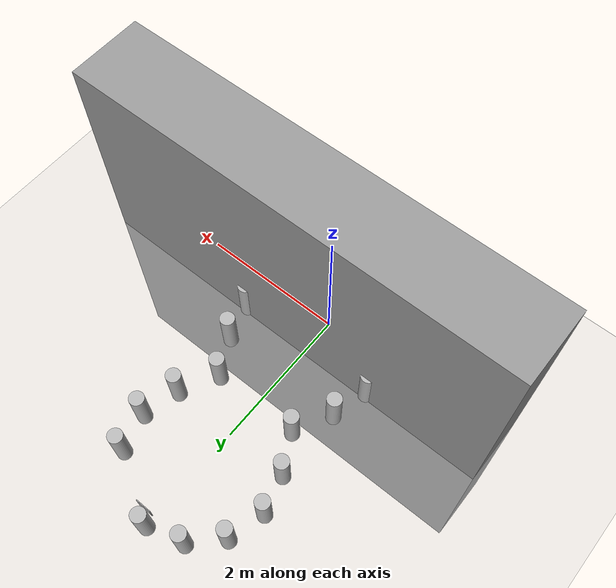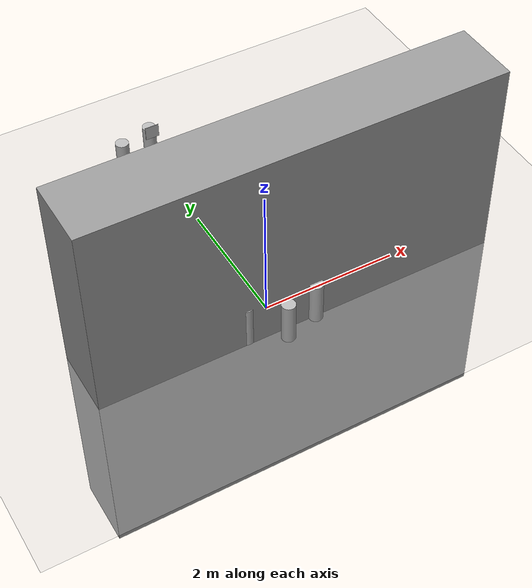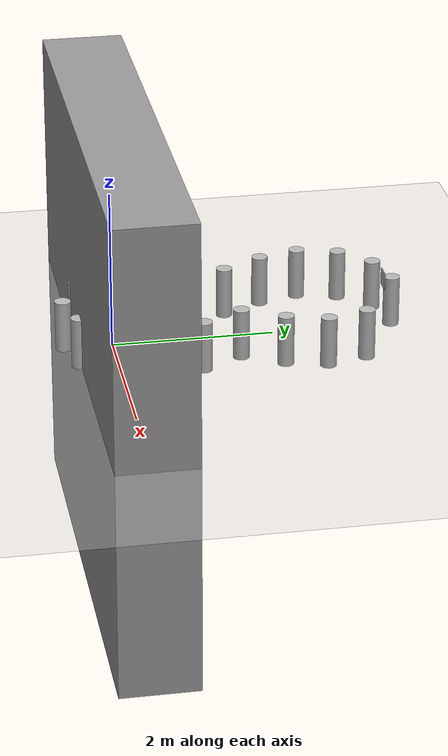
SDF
<sdf version="1.7">
 <world name="default">
  <include><uri>model://unit_box_1</uri><name>unit_box_1</name><pose>0.3 0.05 0.015 0 0 -1.57</pose></include>
  <light name="sun" type="directional">
   <pose>0 0 10 0 -0 0</pose>
   <diffuse>0.8 0.8 0.8 1</diffuse>
   <specular>0.2 0.2 0.2 1</specular>
   <attenuation>
    <range>1000</range>
    <constant>0.9</constant>
    <linear>0.01</linear>
    <quadratic>0.001</quadratic>
   </attenuation>
   <direction>-0.5 0.1 -0.9</direction>
   <spot><inner_angle>0</inner_angle><outer_angle>0</outer_angle><falloff>0</falloff></spot>
  </light>
  <model name="ground_plane">
   <static>1</static>
   <link name="link">
    <collision name="collision">
     <geometry><plane><normal>0 0 1</normal><size>100 100</size></plane></geometry>
     <surface>
      <contact><collide_bitmask>65535</collide_bitmask></contact>
      <friction><ode><mu>100</mu><mu2>50</mu2></ode></friction>
     </surface>
    </collision>
    <visual name="visual">
     <cast_shadows>0</cast_shadows>
     <geometry><plane><normal>0 0 1</normal><size>100 100</size></plane></geometry>
     <material>
      <script><uri>file://media/materials/scripts/gazebo.material</uri><name>Gazebo/Grey</name></script>
     </material>
    </visual>
   </link>
  </model>
  <physics type="ode">
   <max_step_size>0.001</max_step_size>
   <real_time_factor>1</real_time_factor>
   <real_time_update_rate>1000</real_time_update_rate>
  </physics>
  <model name="column_1">
   <static>1</static>
   <link name="link">
    <collision name="collision"><geometry><box><size>0.2 0.2 1.3</size></box></geometry></collision>
    <visual name="visual">
     <geometry>
      <mesh><scale>0.5 0.5 0.8</scale><uri>model://ICT_models/column_1/meshes/model.dae</uri></mesh>
     </geometry>
     <material>
      <script>
       <uri>model://ICT_models/column_1/materials/scripts</uri>
       <uri>model://ICT_models/column_1/materials/textures</uri>
       <name>model_material/Diffuse</name>
      </script>
     </material>
    </visual>
   </link>
   <pose>-0.6 1.5 0 0 -0 0</pose>
  </model>
  <model name="column_2">
   <static>1</static>
   <link name="link">
    <collision name="collision"><geometry><box><size>0.2 0.2 1.3</size></box></geometry></collision>
    <visual name="visual">
     <geometry>
      <mesh><scale>0.5 0.5 0.8</scale><uri>model://ICT_models/column_2/meshes/model.dae</uri></mesh>
     </geometry>
     <material>
      <script>
       <uri>model://ICT_models/column_2/materials/scripts</uri>
       <uri>model://ICT_models/column_2/materials/textures</uri>
       <name>model_material2/Diffuse</name>
      </script>
     </material>
    </visual>
   </link>
   <pose>-0.866 2 0 0 -0 0</pose>
  </model>
  <model name="column_3">
   <static>1</static>
   <link name="link">
    <collision name="collision"><geometry><box><size>0.2 0.2 1.3</size></box></geometry></collision>
    <visual name="visual">
     <geometry>
      <mesh><scale>0.5 0.5 0.8</scale><uri>model://ICT_models/column_3/meshes/model.dae</uri></mesh>
     </geometry>
     <material>
      <script>
       <uri>model://ICT_models/column_3/materials/scripts</uri>
       <uri>model://ICT_models/column_3/materials/textures</uri>
       <name>model_material3/Diffuse</name>
      </script>
     </material>
    </visual>
   </link>
   <pose>-1 2.5 0 0 -0 0</pose>
  </model>
  <model name="column_4">
   <static>1</static>
   <link name="link">
    <collision name="collision"><geometry><box><size>0.2 0.2 1.3</size></box></geometry></collision>
    <visual name="visual">
     <geometry>
      <mesh><scale>0.5 0.5 0.8</scale><uri>model://ICT_models/column_4/meshes/model.dae</uri></mesh>
     </geometry>
     <material>
      <script>
       <uri>model://ICT_models/column_4/materials/scripts</uri>
       <uri>model://ICT_models/column_4/materials/textures</uri>
       <name>model_material4/Diffuse</name>
      </script>
     </material>
    </visual>
   </link>
   <pose>-0.866 3 0 0 -0 0</pose>
  </model>
  <model name="column_5">
   <static>1</static>
   <link name="link">
    <collision name="collision"><geometry><box><size>0.2 0.2 1.3</size></box></geometry></collision>
    <visual name="visual">
     <geometry>
      <mesh><scale>0.5 0.5 0.8</scale><uri>model://ICT_models/column_5/meshes/model.dae</uri></mesh>
     </geometry>
     <material>
      <script>
       <uri>model://ICT_models/column_5/materials/scripts</uri>
       <uri>model://ICT_models/column_5/materials/textures</uri>
       <name>model_material5/Diffuse</name>
      </script>
     </material>
    </visual>
   </link>
   <pose>-0.5 3.366 0 0 -0 0</pose>
  </model>
  <model name="column_6">
   <static>1</static>
   <link name="link">
    <collision name="collision"><geometry><box><size>0.2 0.2 1.3</size></box></geometry></collision>
    <visual name="visual">
     <geometry>
      <mesh><scale>0.5 0.5 0.8</scale><uri>model://ICT_models/column_6/meshes/model.dae</uri></mesh>
     </geometry>
     <material>
      <script>
       <uri>model://ICT_models/column_6/materials/scripts</uri>
       <uri>model://ICT_models/column_6/materials/textures</uri>
       <name>model_material6/Diffuse</name>
      </script>
     </material>
    </visual>
   </link>
   <pose>0 3.5 0 0 -0 0</pose>
  </model>
  <model name="column_8">
   <static>1</static>
   <link name="link">
    <collision name="collision"><geometry><box><size>0.2 0.2 1.3</size></box></geometry></collision>
    <visual name="visual">
     <geometry>
      <mesh><scale>0.5 0.5 0.8</scale><uri>model://ICT_models/column_8/meshes/model.dae</uri></mesh>
     </geometry>
     <material>
      <script>
       <uri>model://ICT_models/column_8/materials/scripts</uri>
       <uri>model://ICT_models/column_8/materials/textures</uri>
       <name>model_material8/Diffuse</name>
      </script>
     </material>
    </visual>
   </link>
   <pose>0.866 3 0 0 -0 0</pose>
  </model>
  <model name="column_9">
   <static>1</static>
   <link name="link">
    <collision name="collision"><geometry><box><size>0.2 0.2 1.3</size></box></geometry></collision>
    <visual name="visual">
     <geometry>
      <mesh><scale>0.5 0.5 0.8</scale><uri>model://ICT_models/column_9/meshes/model.dae</uri></mesh>
     </geometry>
     <material>
      <script>
       <uri>model://ICT_models/column_9/materials/scripts</uri>
       <uri>model://ICT_models/column_9/materials/textures</uri>
       <name>model_material9/Diffuse</name>
      </script>
     </material>
    </visual>
   </link>
   <pose>1 2.5 0 0 -0 0</pose>
  </model>
  <model name="column_10">
   <static>1</static>
   <link name="link">
    <collision name="collision"><geometry><box><size>0.2 0.2 1.3</size></box></geometry></collision>
    <visual name="visual">
     <geometry>
      <mesh><scale>0.5 0.5 0.8</scale><uri>model://ICT_models/column_10/meshes/model.dae</uri></mesh>
     </geometry>
     <material>
      <script>
       <uri>model://ICT_models/column_10/materials/scripts</uri>
       <uri>model://ICT_models/column_10/materials/textures</uri>
       <name>model_material10/Diffuse</name>
      </script>
     </material>
    </visual>
   </link>
   <pose>0.866 2 0 0 -0 0</pose>
  </model>
  <model name="column_11">
   <static>1</static>
   <link name="link">
    <collision name="collision"><geometry><box><size>0.2 0.2 1.3</size></box></geometry></collision>
    <visual name="visual">
     <geometry>
      <mesh><scale>0.5 0.5 0.8</scale><uri>model://ICT_models/column_11/meshes/model.dae</uri></mesh>
     </geometry>
     <material>
      <script>
       <uri>model://ICT_models/column_11/materials/scripts</uri>
       <uri>model://ICT_models/column_11/materials/textures</uri>
       <name>model_material11/Diffuse</name>
      </script>
     </material>
    </visual>
   </link>
   <pose>0.6 1.5 0 0 -0 0</pose>
  </model>
  <model name="column_12">
   <static>1</static>
   <link name="link">
    <collision name="collision"><geometry><box><size>0.2 0.2 1.3</size></box></geometry></collision>
    <visual name="visual">
     <geometry>
      <mesh><scale>0.5 0.5 0.8</scale><uri>model://ICT_models/column_12/meshes/model.dae</uri></mesh>
     </geometry>
     <material>
      <script>
       <uri>model://ICT_models/column_12/materials/scripts</uri>
       <uri>model://ICT_models/column_12/materials/textures</uri>
       <name>model_material12/Diffuse</name>
      </script>
     </material>
    </visual>
   </link>
   <pose>0.866 1 0 0 -0 0</pose>
  </model>
  <model name="column_13">
   <static>1</static>
   <link name="link">
    <collision name="collision"><geometry><box><size>0.2 0.2 1.3</size></box></geometry></collision>
    <visual name="visual">
     <geometry>
      <mesh><scale>0.5 0.5 0.8</scale><uri>model://ICT_models/column_13/meshes/model.dae</uri></mesh>
     </geometry>
     <material>
      <script>
       <uri>model://ICT_models/column_13/materials/scripts</uri>
       <uri>model://ICT_models/column_13/materials/textures</uri>
       <name>model_material13/Diffuse</name>
      </script>
     </material>
    </visual>
   </link>
   <pose>1 0.5 0 0 -0 0</pose>
  </model>
  <model name="column_14">
   <static>1</static>
   <link name="link">
    <collision name="collision"><geometry><box><size>0.2 0.2 1.3</size></box></geometry></collision>
    <visual name="visual">
     <geometry>
      <mesh><scale>0.5 0.5 0.8</scale><uri>model://ICT_models/column_14/meshes/model.dae</uri></mesh>
     </geometry>
     <material>
      <script>
       <uri>model://ICT_models/column_14/materials/scripts</uri>
       <uri>model://ICT_models/column_14/materials/textures</uri>
       <name>model_material14/Diffuse</name>
      </script>
     </material>
    </visual>
   </link>
   <pose>0.866 0 0 0 -0 0</pose>
  </model>
  <model name="column_15">
   <static>1</static>
   <link name="link">
    <collision name="collision"><geometry><box><size>0.2 0.2 1.3</size></box></geometry></collision>
    <visual name="visual">
     <geometry>
      <mesh><scale>0.5 0.5 0.8</scale><uri>model://ICT_models/column_15/meshes/model.dae</uri></mesh>
     </geometry>
     <material>
      <script>
       <uri>model://ICT_models/column_15/materials/scripts</uri>
       <uri>model://ICT_models/column_15/materials/textures</uri>
       <name>model_material15/Diffuse</name>
      </script>
     </material>
    </visual>
   </link>
   <pose>0.5 -0.466 0 0 -0 0</pose>
  </model>
  <model name="column_16">
   <static>1</static>
   <link name="link">
    <collision name="collision"><geometry><box><size>0.2 0.2 1.3</size></box></geometry></collision>
    <visual name="visual">
     <geometry>
      <mesh><scale>0.5 0.5 0.8</scale><uri>model://ICT_models/column_16/meshes/model.dae</uri></mesh>
     </geometry>
     <material>
      <script>
       <uri>model://ICT_models/column_16/materials/scripts</uri>
       <uri>model://ICT_models/column_16/materials/textures</uri>
       <name>model_material16/Diffuse</name>
      </script>
     </material>
    </visual>
   </link>
   <pose>0 -0.6 0 0 -0 0</pose>
  </model>
  <model name="column_17">
   <static>1</static>
   <link name="link">
    <collision name="collision"><geometry><box><size>0.2 0.2 1.3</size></box></geometry></collision>
    <visual name="visual">
     <geometry>
      <mesh><scale>0.5 0.5 0.8</scale><uri>model://ICT_models/column_17/meshes/model.dae</uri></mesh>
     </geometry>
     <material>
      <script>
       <uri>model://ICT_models/column_17/materials/scripts</uri>
       <uri>model://ICT_models/column_17/materials/textures</uri>
       <name>model_material17/Diffuse</name>
      </script>
     </material>
    </visual>
   </link>
   <pose>-0.5 -0.366 0 0 -0 0</pose>
  </model>
  <model name="column_18">
   <static>1</static>
   <link name="link">
    <collision name="collision"><geometry><box><size>0.2 0.2 1.3</size></box></geometry></collision>
    <visual name="visual">
     <geometry>
      <mesh><scale>0.5 0.5 0.8</scale><uri>model://ICT_models/column_18/meshes/model.dae</uri></mesh>
     </geometry>
     <material>
      <script>
       <uri>model://ICT_models/column_18/materials/scripts</uri>
       <uri>model://ICT_models/column_18/materials/textures</uri>
       <name>model_material18/Diffuse</name>
      </script>
     </material>
    </visual>
   </link>
   <pose>-0.866 0 0 0 -0 0</pose>
  </model>
  <model name="column_19">
   <static>1</static>
   <link name="link">
    <collision name="collision"><geometry><box><size>0.2 0.2 1.3</size></box></geometry></collision>
    <visual name="visual">
     <geometry>
      <mesh><scale>0.5 0.5 0.8</scale><uri>model://ICT_models/column_19/meshes/model.dae</uri></mesh>
     </geometry>
     <material>
      <script>
       <uri>model://ICT_models/column_19/materials/scripts</uri>
       <uri>model://ICT_models/column_19/materials/textures</uri>
       <name>model_material19/Diffuse</name>
      </script>
     </material>
    </visual>
   </link>
   <pose>-1 0.5 0 0 -0 0</pose>
  </model>
  <model name="column_20">
   <static>1</static>
   <link name="link">
    <collision name="collision"><geometry><box><size>0.2 0.2 1.3</size></box></geometry></collision>
    <visual name="visual">
     <geometry>
      <mesh><scale>0.5 0.5 0.8</scale><uri>model://ICT_models/column_20/meshes/model.dae</uri></mesh>
     </geometry>
     <material>
      <script>
       <uri>model://ICT_models/column_20/materials/scripts</uri>
       <uri>model://ICT_models/column_20/materials/textures</uri>
       <name>model_material20/Diffuse</name>
      </script>
     </material>
    </visual>
   </link>
   <pose>-0.866 1 0 0 -0 0</pose>
  </model>
  <gravity>0 0 -9.8</gravity>
  <magnetic_field>6e-06 2.3e-05 -4.2e-05</magnetic_field>
  <atmosphere type="adiabatic"/>
  <scene><ambient>0.4 0.4 0.4 1</ambient><background>0.7 0.7 0.7 1</background><shadows>1</shadows></scene>
  <spherical_coordinates>
   <surface_model>EARTH_WGS84</surface_model>
   <latitude_deg>0</latitude_deg>
   <longitude_deg>0</longitude_deg>
   <elevation>0</elevation>
   <heading_deg>0</heading_deg>
  </spherical_coordinates>
  <model name="Apriltag36_11_00001">
   <link name="main">
    <visual name="main_Visual">
     <geometry><box><size>0.2125 0.2125 0.01</size></box></geometry>
     <material>
      <script>
       <uri>model://Apriltag36_11_00001/materials/scripts</uri>
       <uri>model://Apriltag36_11_00001/materials/textures</uri>
       <name>Apriltag36_11_00001</name>
      </script>
     </material>
    </visual>
   </link>
   <static>1</static>
   <pose>0 3.39241 0.6154742 3.14159 -1.56955 1.570795</pose>
  </model>
 </world>
</sdf>

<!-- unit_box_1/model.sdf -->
<sdf version='1.7'>
  <model name='unit_box_1'>
    <link name='link'>
      <visual name='visual'>
        <geometry>
          <box>
            <size>1 6 6</size>
          </box>
        </geometry>
        <material>
          <script>
            <name>Gazebo/Grey</name>
            <uri>file://media/materials/scripts/gazebo.material</uri>
          </script>
          <shader type='pixel'>
            <normal_map>__default__</normal_map>
          </shader>
          <ambient>0.3 0.3 0.3 1</ambient>
          <diffuse>0.7 0.7 0.7 1</diffuse>
          <specular>0.01 0.01 0.01 1</specular>
          <emissive>0 0 0 1</emissive>
        </material>
        <pose>0 0 0 0 -0 0</pose>
        <transparency>0</transparency>
        <cast_shadows>1</cast_shadows>
      </visual>
      <collision name='collision'>
        <laser_retro>0</laser_retro>
        <max_contacts>10</max_contacts>
        <pose>0 0 0 0 -0 0</pose>
        <geometry>
          <box>
            <size>1 6 6</size>
          </box>
        </geometry>
        <surface>
          <friction>
            <ode>
              <mu>1</mu>
              <mu2>1</mu2>
              <fdir1>0 0 0</fdir1>
              <slip1>0</slip1>
              <slip2>0</slip2>
            </ode>
            <torsional>
              <coefficient>1</coefficient>
              <patch_radius>0</patch_radius>
              <surface_radius>0</surface_radius>
              <use_patch_radius>1</use_patch_radius>
              <ode>
                <slip>0</slip>
              </ode>
            </torsional>
          </friction>
          <bounce>
            <restitution_coefficient>0</restitution_coefficient>
            <threshold>1e+06</threshold>
          </bounce>
          <contact>
            <collide_without_contact>0</collide_without_contact>
            <collide_without_contact_bitmask>1</collide_without_contact_bitmask>
            <collide_bitmask>1</collide_bitmask>
            <ode>
              <soft_cfm>0</soft_cfm>
              <soft_erp>0.2</soft_erp>
              <kp>1e+13</kp>
              <kd>1</kd>
              <max_vel>0.01</max_vel>
              <min_depth>0</min_depth>
            </ode>
            <bullet>
              <split_impulse>1</split_impulse>
              <split_impulse_penetration_threshold>-0.01</split_impulse_penetration_threshold>
              <soft_cfm>0</soft_cfm>
              <soft_erp>0.2</soft_erp>
              <kp>1e+13</kp>
              <kd>1</kd>
            </bullet>
          </contact>
        </surface>
      </collision>
    </link>
    <static>0</static>
    <allow_auto_disable>1</allow_auto_disable>
  </model>
</sdf>
